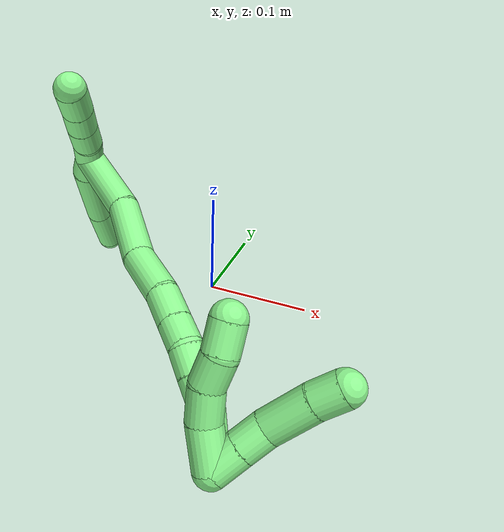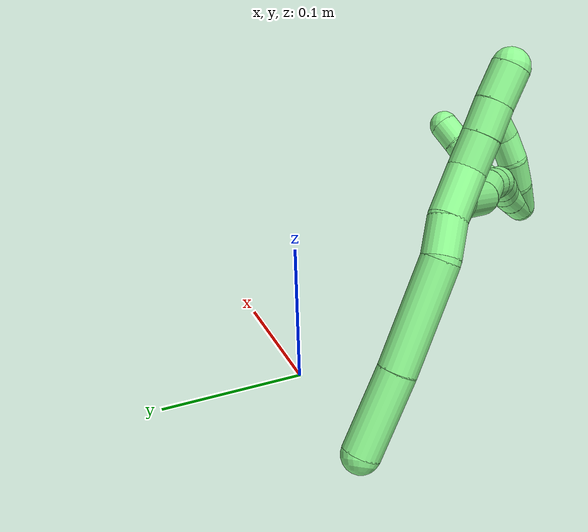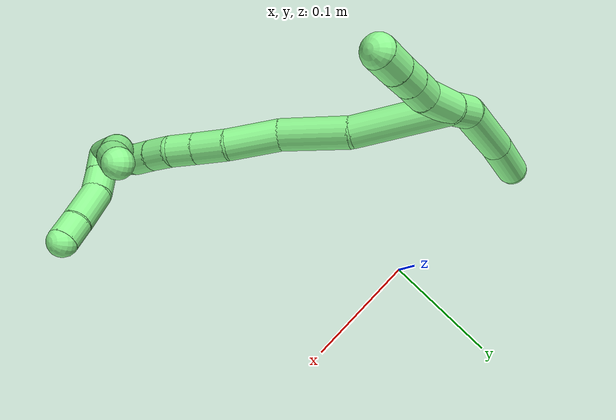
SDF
<sdf version="1.7">
 <world name="default">
  <model name="13">
   <static>0</static>
   <link name="13">
    <collision name="collision-cylinder-e_1_2_8">
     <pose>-5.1e-05 0.000613 -0.012474 -3.09252 -0.004103 0.166791</pose>
     <geometry><cylinder><radius>0.0125</radius><length>0.024977</length></cylinder></geometry>
     <surface>
      <friction><ode><mu>1.16</mu><mu2>1.16</mu2><slip1>0</slip1><slip2>0</slip2></ode></friction>
      <contact><ode><kp>1e+06</kp><kd>1</kd><max_vel>0</max_vel><min_depth>0.001</min_depth></ode></contact>
     </surface>
    </collision>
    <visual name="visual-cylinder-e_1_2_8">
     <pose>-5.1e-05 0.000613 -0.012474 -3.09252 -0.004103 0.166791</pose>
     <geometry><cylinder><radius>0.0125</radius><length>0.024977</length></cylinder></geometry>
     <material><ambient>0.564706 0.984314 0.572549 1</ambient></material>
    </visual>
    <collision name="collision-cylinder-e_2_8_9">
     <pose>0.010797 0.00352 -0.058589 -3.0735 0.312639 -2.71593</pose>
     <geometry><cylinder><radius>0.0125</radius><length>0.070876</length></cylinder></geometry>
     <surface>
      <friction><ode><mu>1.16</mu><mu2>1.16</mu2><slip1>0</slip1><slip2>0</slip2></ode></friction>
      <contact><ode><kp>1e+06</kp><kd>1</kd><max_vel>0</max_vel><min_depth>0.001</min_depth></ode></contact>
     </surface>
    </collision>
    <visual name="visual-cylinder-e_2_8_9">
     <pose>0.010797 0.00352 -0.058589 -3.0735 0.312639 -2.71593</pose>
     <geometry><cylinder><radius>0.0125</radius><length>0.070876</length></cylinder></geometry>
     <material><ambient>0.564706 0.984314 0.572549 1</ambient></material>
    </visual>
    <collision name="collision-cylinder-e_3_9_6">
     <pose>0.031264 0.007927 -0.11747 -3.05807 0.361158 -2.69157</pose>
     <geometry><cylinder><radius>0.0125</radius><length>0.054146</length></cylinder></geometry>
     <surface>
      <friction><ode><mu>1.16</mu><mu2>1.16</mu2><slip1>0</slip1><slip2>0</slip2></ode></friction>
      <contact><ode><kp>1e+06</kp><kd>1</kd><max_vel>0</max_vel><min_depth>0.001</min_depth></ode></contact>
     </surface>
    </collision>
    <visual name="visual-cylinder-e_3_9_6">
     <pose>0.031264 0.007927 -0.11747 -3.05807 0.361158 -2.69157</pose>
     <geometry><cylinder><radius>0.0125</radius><length>0.054146</length></cylinder></geometry>
     <material><ambient>0.564706 0.984314 0.572549 1</ambient></material>
    </visual>
    <collision name="collision-cylinder-e_1_2_10">
     <pose>-0.001284 -0.003761 0.015654 0.235765 -0.079559 -0.009427</pose>
     <geometry><cylinder><radius>0.0125</radius><length>0.032301</length></cylinder></geometry>
     <surface>
      <friction><ode><mu>1.16</mu><mu2>1.16</mu2><slip1>0</slip1><slip2>0</slip2></ode></friction>
      <contact><ode><kp>1e+06</kp><kd>1</kd><max_vel>0</max_vel><min_depth>0.001</min_depth></ode></contact>
     </surface>
    </collision>
    <visual name="visual-cylinder-e_1_2_10">
     <pose>-0.001284 -0.003761 0.015654 0.235765 -0.079559 -0.009427</pose>
     <geometry><cylinder><radius>0.0125</radius><length>0.032301</length></cylinder></geometry>
     <material><ambient>0.564706 0.984314 0.572549 1</ambient></material>
    </visual>
    <collision name="collision-cylinder-e_2_10_11">
     <pose>-0.00578 -0.008837 0.041945 0.123096 -0.291226 -0.018074</pose>
     <geometry><cylinder><radius>0.0125</radius><length>0.02238</length></cylinder></geometry>
     <surface>
      <friction><ode><mu>1.16</mu><mu2>1.16</mu2><slip1>0</slip1><slip2>0</slip2></ode></friction>
      <contact><ode><kp>1e+06</kp><kd>1</kd><max_vel>0</max_vel><min_depth>0.001</min_depth></ode></contact>
     </surface>
    </collision>
    <visual name="visual-cylinder-e_2_10_11">
     <pose>-0.00578 -0.008837 0.041945 0.123096 -0.291226 -0.018074</pose>
     <geometry><cylinder><radius>0.0125</radius><length>0.02238</length></cylinder></geometry>
     <material><ambient>0.564706 0.984314 0.572549 1</ambient></material>
    </visual>
    <collision name="collision-cylinder-e_3_11_12">
     <pose>-0.011747 -0.011289 0.062744 0.111305 -0.263148 -0.014745</pose>
     <geometry><cylinder><radius>0.0125</radius><length>0.021178</length></cylinder></geometry>
     <surface>
      <friction><ode><mu>1.16</mu><mu2>1.16</mu2><slip1>0</slip1><slip2>0</slip2></ode></friction>
      <contact><ode><kp>1e+06</kp><kd>1</kd><max_vel>0</max_vel><min_depth>0.001</min_depth></ode></contact>
     </surface>
    </collision>
    <visual name="visual-cylinder-e_3_11_12">
     <pose>-0.011747 -0.011289 0.062744 0.111305 -0.263148 -0.014745</pose>
     <geometry><cylinder><radius>0.0125</radius><length>0.021178</length></cylinder></geometry>
     <material><ambient>0.564706 0.984314 0.572549 1</ambient></material>
    </visual>
    <collision name="collision-cylinder-e_4_12_5">
     <pose>-0.01789 -0.014222 0.08435 0.155798 -0.284563 -0.022362</pose>
     <geometry><cylinder><radius>0.0125</radius><length>0.024142</length></cylinder></geometry>
     <surface>
      <friction><ode><mu>1.16</mu><mu2>1.16</mu2><slip1>0</slip1><slip2>0</slip2></ode></friction>
      <contact><ode><kp>1e+06</kp><kd>1</kd><max_vel>0</max_vel><min_depth>0.001</min_depth></ode></contact>
     </surface>
    </collision>
    <visual name="visual-cylinder-e_4_12_5">
     <pose>-0.01789 -0.014222 0.08435 0.155798 -0.284563 -0.022362</pose>
     <geometry><cylinder><radius>0.0125</radius><length>0.024142</length></cylinder></geometry>
     <material><ambient>0.564706 0.984314 0.572549 1</ambient></material>
    </visual>
    <collision name="collision-cylinder-e_1_2_13">
     <pose>0.025285 -0.023169 0.014558 1.00981 0.745948 0.425962</pose>
     <geometry><cylinder><radius>0.0125</radius><length>0.074513</length></cylinder></geometry>
     <surface>
      <friction><ode><mu>1.16</mu><mu2>1.16</mu2><slip1>0</slip1><slip2>0</slip2></ode></friction>
      <contact><ode><kp>1e+06</kp><kd>1</kd><max_vel>0</max_vel><min_depth>0.001</min_depth></ode></contact>
     </surface>
    </collision>
    <visual name="visual-cylinder-e_1_2_13">
     <pose>0.025285 -0.023169 0.014558 1.00981 0.745948 0.425962</pose>
     <geometry><cylinder><radius>0.0125</radius><length>0.074513</length></cylinder></geometry>
     <material><ambient>0.564706 0.984314 0.572549 1</ambient></material>
    </visual>
    <collision name="collision-cylinder-e_2_13_14">
     <pose>0.06545 -0.068041 0.037929 1.18501 0.565949 0.386609</pose>
     <geometry><cylinder><radius>0.0125</radius><length>0.055503</length></cylinder></geometry>
     <surface>
      <friction><ode><mu>1.16</mu><mu2>1.16</mu2><slip1>0</slip1><slip2>0</slip2></ode></friction>
      <contact><ode><kp>1e+06</kp><kd>1</kd><max_vel>0</max_vel><min_depth>0.001</min_depth></ode></contact>
     </surface>
    </collision>
    <visual name="visual-cylinder-e_2_13_14">
     <pose>0.06545 -0.068041 0.037929 1.18501 0.565949 0.386609</pose>
     <geometry><cylinder><radius>0.0125</radius><length>0.055503</length></cylinder></geometry>
     <material><ambient>0.564706 0.984314 0.572549 1</ambient></material>
    </visual>
    <collision name="collision-cylinder-e_3_14_15">
     <pose>0.093589 -0.102862 0.056665 0.923283 0.678445 0.347553</pose>
     <geometry><cylinder><radius>0.0125</radius><length>0.042251</length></cylinder></geometry>
     <surface>
      <friction><ode><mu>1.16</mu><mu2>1.16</mu2><slip1>0</slip1><slip2>0</slip2></ode></friction>
      <contact><ode><kp>1e+06</kp><kd>1</kd><max_vel>0</max_vel><min_depth>0.001</min_depth></ode></contact>
     </surface>
    </collision>
    <visual name="visual-cylinder-e_3_14_15">
     <pose>0.093589 -0.102862 0.056665 0.923283 0.678445 0.347553</pose>
     <geometry><cylinder><radius>0.0125</radius><length>0.042251</length></cylinder></geometry>
     <material><ambient>0.564706 0.984314 0.572549 1</ambient></material>
    </visual>
    <collision name="collision-cylinder-e_4_15_16">
     <pose>0.114796 -0.125635 0.07108 1.13514 0.641189 0.417231</pose>
     <geometry><cylinder><radius>0.0125</radius><length>0.026579</length></cylinder></geometry>
     <surface>
      <friction><ode><mu>1.16</mu><mu2>1.16</mu2><slip1>0</slip1><slip2>0</slip2></ode></friction>
      <contact><ode><kp>1e+06</kp><kd>1</kd><max_vel>0</max_vel><min_depth>0.001</min_depth></ode></contact>
     </surface>
    </collision>
    <visual name="visual-cylinder-e_4_15_16">
     <pose>0.114796 -0.125635 0.07108 1.13514 0.641189 0.417231</pose>
     <geometry><cylinder><radius>0.0125</radius><length>0.026579</length></cylinder></geometry>
     <material><ambient>0.564706 0.984314 0.572549 1</ambient></material>
    </visual>
    <collision name="collision-cylinder-e_5_16_17">
     <pose>0.128979 -0.142949 0.079335 1.11441 0.631017 0.401276</pose>
     <geometry><cylinder><radius>0.0125</radius><length>0.021133</length></cylinder></geometry>
     <surface>
      <friction><ode><mu>1.16</mu><mu2>1.16</mu2><slip1>0</slip1><slip2>0</slip2></ode></friction>
      <contact><ode><kp>1e+06</kp><kd>1</kd><max_vel>0</max_vel><min_depth>0.001</min_depth></ode></contact>
     </surface>
    </collision>
    <visual name="visual-cylinder-e_5_16_17">
     <pose>0.128979 -0.142949 0.079335 1.11441 0.631017 0.401276</pose>
     <geometry><cylinder><radius>0.0125</radius><length>0.021133</length></cylinder></geometry>
     <material><ambient>0.564706 0.984314 0.572549 1</ambient></material>
    </visual>
    <collision name="collision-cylinder-e_6_17_18">
     <pose>0.141748 -0.158151 0.083853 1.47063 0.711408 0.648367</pose>
     <geometry><cylinder><radius>0.0125</radius><length>0.020019</length></cylinder></geometry>
     <surface>
      <friction><ode><mu>1.16</mu><mu2>1.16</mu2><slip1>0</slip1><slip2>0</slip2></ode></friction>
      <contact><ode><kp>1e+06</kp><kd>1</kd><max_vel>0</max_vel><min_depth>0.001</min_depth></ode></contact>
     </surface>
    </collision>
    <visual name="visual-cylinder-e_6_17_18">
     <pose>0.141748 -0.158151 0.083853 1.47063 0.711408 0.648367</pose>
     <geometry><cylinder><radius>0.0125</radius><length>0.020019</length></cylinder></geometry>
     <material><ambient>0.564706 0.984314 0.572549 1</ambient></material>
    </visual>
    <collision name="collision-cylinder-e_7_18_19">
     <pose>0.155044 -0.173049 0.085066 1.50902 0.742412 0.701572</pose>
     <geometry><cylinder><radius>0.0125</radius><length>0.020001</length></cylinder></geometry>
     <surface>
      <friction><ode><mu>1.16</mu><mu2>1.16</mu2><slip1>0</slip1><slip2>0</slip2></ode></friction>
      <contact><ode><kp>1e+06</kp><kd>1</kd><max_vel>0</max_vel><min_depth>0.001</min_depth></ode></contact>
     </surface>
    </collision>
    <visual name="visual-cylinder-e_7_18_19">
     <pose>0.155044 -0.173049 0.085066 1.50902 0.742412 0.701572</pose>
     <geometry><cylinder><radius>0.0125</radius><length>0.020001</length></cylinder></geometry>
     <material><ambient>0.564706 0.984314 0.572549 1</ambient></material>
    </visual>
    <collision name="collision-cylinder-e_8_19_20">
     <pose>0.166318 -0.189327 0.085417 1.58239 0.468176 0.473436</pose>
     <geometry><cylinder><radius>0.0125</radius><length>0.020001</length></cylinder></geometry>
     <surface>
      <friction><ode><mu>1.16</mu><mu2>1.16</mu2><slip1>0</slip1><slip2>0</slip2></ode></friction>
      <contact><ode><kp>1e+06</kp><kd>1</kd><max_vel>0</max_vel><min_depth>0.001</min_depth></ode></contact>
     </surface>
    </collision>
    <visual name="visual-cylinder-e_8_19_20">
     <pose>0.166318 -0.189327 0.085417 1.58239 0.468176 0.473436</pose>
     <geometry><cylinder><radius>0.0125</radius><length>0.020001</length></cylinder></geometry>
     <material><ambient>0.564706 0.984314 0.572549 1</ambient></material>
    </visual>
    <collision name="collision-cylinder-e_9_20_1">
     <pose>0.175283 -0.207203 0.085121 1.59234 0.46137 0.471052</pose>
     <geometry><cylinder><radius>0.0125</radius><length>0.020001</length></cylinder></geometry>
     <surface>
      <friction><ode><mu>1.16</mu><mu2>1.16</mu2><slip1>0</slip1><slip2>0</slip2></ode></friction>
      <contact><ode><kp>1e+06</kp><kd>1</kd><max_vel>0</max_vel><min_depth>0.001</min_depth></ode></contact>
     </surface>
    </collision>
    <visual name="visual-cylinder-e_9_20_1">
     <pose>0.175283 -0.207203 0.085121 1.59234 0.46137 0.471052</pose>
     <geometry><cylinder><radius>0.0125</radius><length>0.020001</length></cylinder></geometry>
     <material><ambient>0.564706 0.984314 0.572549 1</ambient></material>
    </visual>
    <collision name="collision-cylinder-e_1_1_21">
     <pose>0.170742 -0.204978 0.090743 -1.09109 -0.619845 0.383983</pose>
     <geometry><cylinder><radius>0.0125</radius><length>0.03096</length></cylinder></geometry>
     <surface>
      <friction><ode><mu>1.16</mu><mu2>1.16</mu2><slip1>0</slip1><slip2>0</slip2></ode></friction>
      <contact><ode><kp>1e+06</kp><kd>1</kd><max_vel>0</max_vel><min_depth>0.001</min_depth></ode></contact>
     </surface>
    </collision>
    <visual name="visual-cylinder-e_1_1_21">
     <pose>0.170742 -0.204978 0.090743 -1.09109 -0.619845 0.383983</pose>
     <geometry><cylinder><radius>0.0125</radius><length>0.03096</length></cylinder></geometry>
     <material><ambient>0.564706 0.984314 0.572549 1</ambient></material>
    </visual>
    <collision name="collision-cylinder-e_2_21_22">
     <pose>0.156801 -0.185164 0.104022 -0.85807 -0.409135 0.189248</pose>
     <geometry><cylinder><radius>0.0125</radius><length>0.024883</length></cylinder></geometry>
     <surface>
      <friction><ode><mu>1.16</mu><mu2>1.16</mu2><slip1>0</slip1><slip2>0</slip2></ode></friction>
      <contact><ode><kp>1e+06</kp><kd>1</kd><max_vel>0</max_vel><min_depth>0.001</min_depth></ode></contact>
     </surface>
    </collision>
    <visual name="visual-cylinder-e_2_21_22">
     <pose>0.156801 -0.185164 0.104022 -0.85807 -0.409135 0.189248</pose>
     <geometry><cylinder><radius>0.0125</radius><length>0.024883</length></cylinder></geometry>
     <material><ambient>0.564706 0.984314 0.572549 1</ambient></material>
    </visual>
    <collision name="collision-cylinder-e_3_22_23">
     <pose>0.150532 -0.16892 0.119419 -0.764505 -0.119412 0.048055</pose>
     <geometry><cylinder><radius>0.0125</radius><length>0.02214</length></cylinder></geometry>
     <surface>
      <friction><ode><mu>1.16</mu><mu2>1.16</mu2><slip1>0</slip1><slip2>0</slip2></ode></friction>
      <contact><ode><kp>1e+06</kp><kd>1</kd><max_vel>0</max_vel><min_depth>0.001</min_depth></ode></contact>
     </surface>
    </collision>
    <visual name="visual-cylinder-e_3_22_23">
     <pose>0.150532 -0.16892 0.119419 -0.764505 -0.119412 0.048055</pose>
     <geometry><cylinder><radius>0.0125</radius><length>0.02214</length></cylinder></geometry>
     <material><ambient>0.564706 0.984314 0.572549 1</ambient></material>
    </visual>
    <collision name="collision-cylinder-e_4_23_4">
     <pose>0.146516 -0.152142 0.132813 -1.03365 -0.247544 0.14118</pose>
     <geometry><cylinder><radius>0.0125</radius><length>0.022017</length></cylinder></geometry>
     <surface>
      <friction><ode><mu>1.16</mu><mu2>1.16</mu2><slip1>0</slip1><slip2>0</slip2></ode></friction>
      <contact><ode><kp>1e+06</kp><kd>1</kd><max_vel>0</max_vel><min_depth>0.001</min_depth></ode></contact>
     </surface>
    </collision>
    <visual name="visual-cylinder-e_4_23_4">
     <pose>0.146516 -0.152142 0.132813 -1.03365 -0.247544 0.14118</pose>
     <geometry><cylinder><radius>0.0125</radius><length>0.022017</length></cylinder></geometry>
     <material><ambient>0.564706 0.984314 0.572549 1</ambient></material>
    </visual>
    <collision name="collision-cylinder-e_1_1_24">
     <pose>0.184401 -0.207379 0.090651 -0.993022 0.418959 -0.229353</pose>
     <geometry><cylinder><radius>0.0125</radius><length>0.022941</length></cylinder></geometry>
     <surface>
      <friction><ode><mu>1.16</mu><mu2>1.16</mu2><slip1>0</slip1><slip2>0</slip2></ode></friction>
      <contact><ode><kp>1e+06</kp><kd>1</kd><max_vel>0</max_vel><min_depth>0.001</min_depth></ode></contact>
     </surface>
    </collision>
    <visual name="visual-cylinder-e_1_1_24">
     <pose>0.184401 -0.207379 0.090651 -0.993022 0.418959 -0.229353</pose>
     <geometry><cylinder><radius>0.0125</radius><length>0.022941</length></cylinder></geometry>
     <material><ambient>0.564706 0.984314 0.572549 1</ambient></material>
    </visual>
    <collision name="collision-cylinder-e_2_24_25">
     <pose>0.19329 -0.190749 0.101945 -0.953747 0.413327 -0.215795</pose>
     <geometry><cylinder><radius>0.0125</radius><length>0.021024</length></cylinder></geometry>
     <surface>
      <friction><ode><mu>1.16</mu><mu2>1.16</mu2><slip1>0</slip1><slip2>0</slip2></ode></friction>
      <contact><ode><kp>1e+06</kp><kd>1</kd><max_vel>0</max_vel><min_depth>0.001</min_depth></ode></contact>
     </surface>
    </collision>
    <visual name="visual-cylinder-e_2_24_25">
     <pose>0.19329 -0.190749 0.101945 -0.953747 0.413327 -0.215795</pose>
     <geometry><cylinder><radius>0.0125</radius><length>0.021024</length></cylinder></geometry>
     <material><ambient>0.564706 0.984314 0.572549 1</ambient></material>
    </visual>
    <collision name="collision-cylinder-e_3_25_26">
     <pose>0.204455 -0.17314 0.12055 -0.642609 0.403078 -0.135797</pose>
     <geometry><cylinder><radius>0.0125</radius><length>0.035402</length></cylinder></geometry>
     <surface>
      <friction><ode><mu>1.16</mu><mu2>1.16</mu2><slip1>0</slip1><slip2>0</slip2></ode></friction>
      <contact><ode><kp>1e+06</kp><kd>1</kd><max_vel>0</max_vel><min_depth>0.001</min_depth></ode></contact>
     </surface>
    </collision>
    <visual name="visual-cylinder-e_3_25_26">
     <pose>0.204455 -0.17314 0.12055 -0.642609 0.403078 -0.135797</pose>
     <geometry><cylinder><radius>0.0125</radius><length>0.035402</length></cylinder></geometry>
     <material><ambient>0.564706 0.984314 0.572549 1</ambient></material>
    </visual>
    <collision name="collision-cylinder-e_4_26_3">
     <pose>0.216411 -0.15834 0.141059 -0.593452 0.507411 -0.158228</pose>
     <geometry><cylinder><radius>0.0125</radius><length>0.020633</length></cylinder></geometry>
     <surface>
      <friction><ode><mu>1.16</mu><mu2>1.16</mu2><slip1>0</slip1><slip2>0</slip2></ode></friction>
      <contact><ode><kp>1e+06</kp><kd>1</kd><max_vel>0</max_vel><min_depth>0.001</min_depth></ode></contact>
     </surface>
    </collision>
    <visual name="visual-cylinder-e_4_26_3">
     <pose>0.216411 -0.15834 0.141059 -0.593452 0.507411 -0.158228</pose>
     <geometry><cylinder><radius>0.0125</radius><length>0.020633</length></cylinder></geometry>
     <material><ambient>0.564706 0.984314 0.572549 1</ambient></material>
    </visual>
    <collision name="collision-sphere-3">
     <pose>0.221424 -0.153298 0.148534 0 -0 0</pose>
     <geometry><sphere><radius>0.0125</radius></sphere></geometry>
     <surface>
      <friction><ode><mu>1.16</mu><mu2>1.16</mu2><slip1>0</slip1><slip2>0</slip2></ode></friction>
      <contact><ode><kp>1e+06</kp><kd>1</kd><max_vel>0</max_vel><min_depth>0.001</min_depth></ode></contact>
     </surface>
    </collision>
    <visual name="visual-sphere-3">
     <pose>0.221424 -0.153298 0.148534 0 -0 0</pose>
     <geometry><sphere><radius>0.0125</radius></sphere></geometry>
     <material><ambient>0.564706 0.984314 0.572549 1</ambient></material>
    </visual>
    <collision name="collision-sphere-26">
     <pose>0.211398 -0.163382 0.133584 0 -0 0</pose>
     <geometry><sphere><radius>0.0125</radius></sphere></geometry>
     <surface>
      <friction><ode><mu>1.16</mu><mu2>1.16</mu2><slip1>0</slip1><slip2>0</slip2></ode></friction>
      <contact><ode><kp>1e+06</kp><kd>1</kd><max_vel>0</max_vel><min_depth>0.001</min_depth></ode></contact>
     </surface>
    </collision>
    <visual name="visual-sphere-26">
     <pose>0.211398 -0.163382 0.133584 0 -0 0</pose>
     <geometry><sphere><radius>0.0125</radius></sphere></geometry>
     <material><ambient>0.564706 0.984314 0.572549 1</ambient></material>
    </visual>
    <collision name="collision-sphere-25">
     <pose>0.197512 -0.182898 0.107515 0 -0 0</pose>
     <geometry><sphere><radius>0.0125</radius></sphere></geometry>
     <surface>
      <friction><ode><mu>1.16</mu><mu2>1.16</mu2><slip1>0</slip1><slip2>0</slip2></ode></friction>
      <contact><ode><kp>1e+06</kp><kd>1</kd><max_vel>0</max_vel><min_depth>0.001</min_depth></ode></contact>
     </surface>
    </collision>
    <visual name="visual-sphere-25">
     <pose>0.197512 -0.182898 0.107515 0 -0 0</pose>
     <geometry><sphere><radius>0.0125</radius></sphere></geometry>
     <material><ambient>0.564706 0.984314 0.572549 1</ambient></material>
    </visual>
    <collision name="collision-sphere-24">
     <pose>0.189067 -0.198601 0.096374 0 -0 0</pose>
     <geometry><sphere><radius>0.0125</radius></sphere></geometry>
     <surface>
      <friction><ode><mu>1.16</mu><mu2>1.16</mu2><slip1>0</slip1><slip2>0</slip2></ode></friction>
      <contact><ode><kp>1e+06</kp><kd>1</kd><max_vel>0</max_vel><min_depth>0.001</min_depth></ode></contact>
     </surface>
    </collision>
    <visual name="visual-sphere-24">
     <pose>0.189067 -0.198601 0.096374 0 -0 0</pose>
     <geometry><sphere><radius>0.0125</radius></sphere></geometry>
     <material><ambient>0.564706 0.984314 0.572549 1</ambient></material>
    </visual>
    <collision name="collision-sphere-4">
     <pose>0.143819 -0.142972 0.138274 0 -0 0</pose>
     <geometry><sphere><radius>0.0125</radius></sphere></geometry>
     <surface>
      <friction><ode><mu>1.16</mu><mu2>1.16</mu2><slip1>0</slip1><slip2>0</slip2></ode></friction>
      <contact><ode><kp>1e+06</kp><kd>1</kd><max_vel>0</max_vel><min_depth>0.001</min_depth></ode></contact>
     </surface>
    </collision>
    <visual name="visual-sphere-4">
     <pose>0.143819 -0.142972 0.138274 0 -0 0</pose>
     <geometry><sphere><radius>0.0125</radius></sphere></geometry>
     <material><ambient>0.564706 0.984314 0.572549 1</ambient></material>
    </visual>
    <collision name="collision-sphere-23">
     <pose>0.149214 -0.161312 0.127352 0 -0 0</pose>
     <geometry><sphere><radius>0.0125</radius></sphere></geometry>
     <surface>
      <friction><ode><mu>1.16</mu><mu2>1.16</mu2><slip1>0</slip1><slip2>0</slip2></ode></friction>
      <contact><ode><kp>1e+06</kp><kd>1</kd><max_vel>0</max_vel><min_depth>0.001</min_depth></ode></contact>
     </surface>
    </collision>
    <visual name="visual-sphere-23">
     <pose>0.149214 -0.161312 0.127352 0 -0 0</pose>
     <geometry><sphere><radius>0.0125</radius></sphere></geometry>
     <material><ambient>0.564706 0.984314 0.572549 1</ambient></material>
    </visual>
    <collision name="collision-sphere-22">
     <pose>0.151851 -0.176528 0.111486 0 -0 0</pose>
     <geometry><sphere><radius>0.0125</radius></sphere></geometry>
     <surface>
      <friction><ode><mu>1.16</mu><mu2>1.16</mu2><slip1>0</slip1><slip2>0</slip2></ode></friction>
      <contact><ode><kp>1e+06</kp><kd>1</kd><max_vel>0</max_vel><min_depth>0.001</min_depth></ode></contact>
     </surface>
    </collision>
    <visual name="visual-sphere-22">
     <pose>0.151851 -0.176528 0.111486 0 -0 0</pose>
     <geometry><sphere><radius>0.0125</radius></sphere></geometry>
     <material><ambient>0.564706 0.984314 0.572549 1</ambient></material>
    </visual>
    <collision name="collision-sphere-21">
     <pose>0.16175 -0.1938 0.096559 0 -0 0</pose>
     <geometry><sphere><radius>0.0125</radius></sphere></geometry>
     <surface>
      <friction><ode><mu>1.16</mu><mu2>1.16</mu2><slip1>0</slip1><slip2>0</slip2></ode></friction>
      <contact><ode><kp>1e+06</kp><kd>1</kd><max_vel>0</max_vel><min_depth>0.001</min_depth></ode></contact>
     </surface>
    </collision>
    <visual name="visual-sphere-21">
     <pose>0.16175 -0.1938 0.096559 0 -0 0</pose>
     <geometry><sphere><radius>0.0125</radius></sphere></geometry>
     <material><ambient>0.564706 0.984314 0.572549 1</ambient></material>
    </visual>
    <collision name="collision-sphere-1">
     <pose>0.179735 -0.216156 0.084928 0 -0 0</pose>
     <geometry><sphere><radius>0.0125</radius></sphere></geometry>
     <surface>
      <friction><ode><mu>1.16</mu><mu2>1.16</mu2><slip1>0</slip1><slip2>0</slip2></ode></friction>
      <contact><ode><kp>1e+06</kp><kd>1</kd><max_vel>0</max_vel><min_depth>0.001</min_depth></ode></contact>
     </surface>
    </collision>
    <visual name="visual-sphere-1">
     <pose>0.179735 -0.216156 0.084928 0 -0 0</pose>
     <geometry><sphere><radius>0.0125</radius></sphere></geometry>
     <material><ambient>0.564706 0.984314 0.572549 1</ambient></material>
    </visual>
    <collision name="collision-sphere-11">
     <pose>-0.008993 -0.010153 0.052583 0 -0 0</pose>
     <geometry><sphere><radius>0.0125</radius></sphere></geometry>
     <surface>
      <friction><ode><mu>1.16</mu><mu2>1.16</mu2><slip1>0</slip1><slip2>0</slip2></ode></friction>
      <contact><ode><kp>1e+06</kp><kd>1</kd><max_vel>0</max_vel><min_depth>0.001</min_depth></ode></contact>
     </surface>
    </collision>
    <visual name="visual-sphere-11">
     <pose>-0.008993 -0.010153 0.052583 0 -0 0</pose>
     <geometry><sphere><radius>0.0125</radius></sphere></geometry>
     <material><ambient>0.564706 0.984314 0.572549 1</ambient></material>
    </visual>
    <collision name="collision-sphere-10">
     <pose>-0.002567 -0.007521 0.031308 0 -0 0</pose>
     <geometry><sphere><radius>0.0125</radius></sphere></geometry>
     <surface>
      <friction><ode><mu>1.16</mu><mu2>1.16</mu2><slip1>0</slip1><slip2>0</slip2></ode></friction>
      <contact><ode><kp>1e+06</kp><kd>1</kd><max_vel>0</max_vel><min_depth>0.001</min_depth></ode></contact>
     </surface>
    </collision>
    <visual name="visual-sphere-10">
     <pose>-0.002567 -0.007521 0.031308 0 -0 0</pose>
     <geometry><sphere><radius>0.0125</radius></sphere></geometry>
     <material><ambient>0.564706 0.984314 0.572549 1</ambient></material>
    </visual>
    <collision name="collision-sphere-6">
     <pose>0.04083 0.01004 -0.142708 0 -0 0</pose>
     <geometry><sphere><radius>0.0125</radius></sphere></geometry>
     <surface>
      <friction><ode><mu>1.16</mu><mu2>1.16</mu2><slip1>0</slip1><slip2>0</slip2></ode></friction>
      <contact><ode><kp>1e+06</kp><kd>1</kd><max_vel>0</max_vel><min_depth>0.001</min_depth></ode></contact>
     </surface>
    </collision>
    <visual name="visual-sphere-6">
     <pose>0.04083 0.01004 -0.142708 0 -0 0</pose>
     <geometry><sphere><radius>0.0125</radius></sphere></geometry>
     <material><ambient>0.564706 0.984314 0.572549 1</ambient></material>
    </visual>
    <collision name="collision-sphere-9">
     <pose>0.021697 0.005814 -0.092232 0 -0 0</pose>
     <geometry><sphere><radius>0.0125</radius></sphere></geometry>
     <surface>
      <friction><ode><mu>1.16</mu><mu2>1.16</mu2><slip1>0</slip1><slip2>0</slip2></ode></friction>
      <contact><ode><kp>1e+06</kp><kd>1</kd><max_vel>0</max_vel><min_depth>0.001</min_depth></ode></contact>
     </surface>
    </collision>
    <visual name="visual-sphere-9">
     <pose>0.021697 0.005814 -0.092232 0 -0 0</pose>
     <geometry><sphere><radius>0.0125</radius></sphere></geometry>
     <material><ambient>0.564706 0.984314 0.572549 1</ambient></material>
    </visual>
    <collision name="collision-sphere-2">
     <geometry><sphere><radius>0.0125</radius></sphere></geometry>
     <surface>
      <friction><ode><mu>1.16</mu><mu2>1.16</mu2><slip1>0</slip1><slip2>0</slip2></ode></friction>
      <contact><ode><kp>1e+06</kp><kd>1</kd><max_vel>0</max_vel><min_depth>0.001</min_depth></ode></contact>
     </surface>
    </collision>
    <visual name="visual-sphere-2">
     <geometry><sphere><radius>0.0125</radius></sphere></geometry>
     <material><ambient>0.564706 0.984314 0.572549 1</ambient></material>
    </visual>
    <collision name="collision-sphere-19">
     <pose>0.161805 -0.180403 0.085521 0 -0 0</pose>
     <geometry><sphere><radius>0.0125</radius></sphere></geometry>
     <surface>
      <friction><ode><mu>1.16</mu><mu2>1.16</mu2><slip1>0</slip1><slip2>0</slip2></ode></friction>
      <contact><ode><kp>1e+06</kp><kd>1</kd><max_vel>0</max_vel><min_depth>0.001</min_depth></ode></contact>
     </surface>
    </collision>
    <visual name="visual-sphere-19">
     <pose>0.161805 -0.180403 0.085521 0 -0 0</pose>
     <geometry><sphere><radius>0.0125</radius></sphere></geometry>
     <material><ambient>0.564706 0.984314 0.572549 1</ambient></material>
    </visual>
    <collision name="collision-sphere-8">
     <pose>-0.000102 0.001225 -0.024947 0 -0 0</pose>
     <geometry><sphere><radius>0.0125</radius></sphere></geometry>
     <surface>
      <friction><ode><mu>1.16</mu><mu2>1.16</mu2><slip1>0</slip1><slip2>0</slip2></ode></friction>
      <contact><ode><kp>1e+06</kp><kd>1</kd><max_vel>0</max_vel><min_depth>0.001</min_depth></ode></contact>
     </surface>
    </collision>
    <visual name="visual-sphere-8">
     <pose>-0.000102 0.001225 -0.024947 0 -0 0</pose>
     <geometry><sphere><radius>0.0125</radius></sphere></geometry>
     <material><ambient>0.564706 0.984314 0.572549 1</ambient></material>
    </visual>
    <collision name="collision-sphere-12">
     <pose>-0.014502 -0.012425 0.072905 0 -0 0</pose>
     <geometry><sphere><radius>0.0125</radius></sphere></geometry>
     <surface>
      <friction><ode><mu>1.16</mu><mu2>1.16</mu2><slip1>0</slip1><slip2>0</slip2></ode></friction>
      <contact><ode><kp>1e+06</kp><kd>1</kd><max_vel>0</max_vel><min_depth>0.001</min_depth></ode></contact>
     </surface>
    </collision>
    <visual name="visual-sphere-12">
     <pose>-0.014502 -0.012425 0.072905 0 -0 0</pose>
     <geometry><sphere><radius>0.0125</radius></sphere></geometry>
     <material><ambient>0.564706 0.984314 0.572549 1</ambient></material>
    </visual>
    <collision name="collision-sphere-5">
     <pose>-0.021279 -0.01602 0.095795 0 -0 0</pose>
     <geometry><sphere><radius>0.0125</radius></sphere></geometry>
     <surface>
      <friction><ode><mu>1.16</mu><mu2>1.16</mu2><slip1>0</slip1><slip2>0</slip2></ode></friction>
      <contact><ode><kp>1e+06</kp><kd>1</kd><max_vel>0</max_vel><min_depth>0.001</min_depth></ode></contact>
     </surface>
    </collision>
    <visual name="visual-sphere-5">
     <pose>-0.021279 -0.01602 0.095795 0 -0 0</pose>
     <geometry><sphere><radius>0.0125</radius></sphere></geometry>
     <material><ambient>0.564706 0.984314 0.572549 1</ambient></material>
    </visual>
    <collision name="collision-sphere-13">
     <pose>0.050569 -0.046338 0.029115 0 -0 0</pose>
     <geometry><sphere><radius>0.0125</radius></sphere></geometry>
     <surface>
      <friction><ode><mu>1.16</mu><mu2>1.16</mu2><slip1>0</slip1><slip2>0</slip2></ode></friction>
      <contact><ode><kp>1e+06</kp><kd>1</kd><max_vel>0</max_vel><min_depth>0.001</min_depth></ode></contact>
     </surface>
    </collision>
    <visual name="visual-sphere-13">
     <pose>0.050569 -0.046338 0.029115 0 -0 0</pose>
     <geometry><sphere><radius>0.0125</radius></sphere></geometry>
     <material><ambient>0.564706 0.984314 0.572549 1</ambient></material>
    </visual>
    <collision name="collision-sphere-14">
     <pose>0.080331 -0.089743 0.046744 0 -0 0</pose>
     <geometry><sphere><radius>0.0125</radius></sphere></geometry>
     <surface>
      <friction><ode><mu>1.16</mu><mu2>1.16</mu2><slip1>0</slip1><slip2>0</slip2></ode></friction>
      <contact><ode><kp>1e+06</kp><kd>1</kd><max_vel>0</max_vel><min_depth>0.001</min_depth></ode></contact>
     </surface>
    </collision>
    <visual name="visual-sphere-14">
     <pose>0.080331 -0.089743 0.046744 0 -0 0</pose>
     <geometry><sphere><radius>0.0125</radius></sphere></geometry>
     <material><ambient>0.564706 0.984314 0.572549 1</ambient></material>
    </visual>
    <collision name="collision-sphere-15">
     <pose>0.106847 -0.11598 0.066586 0 -0 0</pose>
     <geometry><sphere><radius>0.0125</radius></sphere></geometry>
     <surface>
      <friction><ode><mu>1.16</mu><mu2>1.16</mu2><slip1>0</slip1><slip2>0</slip2></ode></friction>
      <contact><ode><kp>1e+06</kp><kd>1</kd><max_vel>0</max_vel><min_depth>0.001</min_depth></ode></contact>
     </surface>
    </collision>
    <visual name="visual-sphere-15">
     <pose>0.106847 -0.11598 0.066586 0 -0 0</pose>
     <geometry><sphere><radius>0.0125</radius></sphere></geometry>
     <material><ambient>0.564706 0.984314 0.572549 1</ambient></material>
    </visual>
    <collision name="collision-sphere-16">
     <pose>0.122745 -0.13529 0.075575 0 -0 0</pose>
     <geometry><sphere><radius>0.0125</radius></sphere></geometry>
     <surface>
      <friction><ode><mu>1.16</mu><mu2>1.16</mu2><slip1>0</slip1><slip2>0</slip2></ode></friction>
      <contact><ode><kp>1e+06</kp><kd>1</kd><max_vel>0</max_vel><min_depth>0.001</min_depth></ode></contact>
     </surface>
    </collision>
    <visual name="visual-sphere-16">
     <pose>0.122745 -0.13529 0.075575 0 -0 0</pose>
     <geometry><sphere><radius>0.0125</radius></sphere></geometry>
     <material><ambient>0.564706 0.984314 0.572549 1</ambient></material>
    </visual>
    <collision name="collision-sphere-17">
     <pose>0.135213 -0.150607 0.083095 0 -0 0</pose>
     <geometry><sphere><radius>0.0125</radius></sphere></geometry>
     <surface>
      <friction><ode><mu>1.16</mu><mu2>1.16</mu2><slip1>0</slip1><slip2>0</slip2></ode></friction>
      <contact><ode><kp>1e+06</kp><kd>1</kd><max_vel>0</max_vel><min_depth>0.001</min_depth></ode></contact>
     </surface>
    </collision>
    <visual name="visual-sphere-17">
     <pose>0.135213 -0.150607 0.083095 0 -0 0</pose>
     <geometry><sphere><radius>0.0125</radius></sphere></geometry>
     <material><ambient>0.564706 0.984314 0.572549 1</ambient></material>
    </visual>
    <collision name="collision-sphere-18">
     <pose>0.148284 -0.165694 0.084611 0 -0 0</pose>
     <geometry><sphere><radius>0.0125</radius></sphere></geometry>
     <surface>
      <friction><ode><mu>1.16</mu><mu2>1.16</mu2><slip1>0</slip1><slip2>0</slip2></ode></friction>
      <contact><ode><kp>1e+06</kp><kd>1</kd><max_vel>0</max_vel><min_depth>0.001</min_depth></ode></contact>
     </surface>
    </collision>
    <visual name="visual-sphere-18">
     <pose>0.148284 -0.165694 0.084611 0 -0 0</pose>
     <geometry><sphere><radius>0.0125</radius></sphere></geometry>
     <material><ambient>0.564706 0.984314 0.572549 1</ambient></material>
    </visual>
    <collision name="collision-sphere-20">
     <pose>0.170831 -0.198251 0.085314 0 -0 0</pose>
     <geometry><sphere><radius>0.0125</radius></sphere></geometry>
     <surface>
      <friction><ode><mu>1.16</mu><mu2>1.16</mu2><slip1>0</slip1><slip2>0</slip2></ode></friction>
      <contact><ode><kp>1e+06</kp><kd>1</kd><max_vel>0</max_vel><min_depth>0.001</min_depth></ode></contact>
     </surface>
    </collision>
    <visual name="visual-sphere-20">
     <pose>0.170831 -0.198251 0.085314 0 -0 0</pose>
     <geometry><sphere><radius>0.0125</radius></sphere></geometry>
     <material><ambient>0.564706 0.984314 0.572549 1</ambient></material>
    </visual>
    <inertial>
     <pose>0.087157 -0.089576 0.043057 0 -0 0</pose>
     <mass>0.75</mass>
     <inertia>
      <ixx>5.9e-05</ixx>
      <ixy>0</ixy>
      <ixz>0</ixz>
      <iyy>0.000108</iyy>
      <iyz>0</iyz>
      <izz>-1.3e-05</izz>
     </inertia>
    </inertial>
   </link>
   <pose>-0.095226 -0.061418 0.150219 0.504596 0.447668 0.242902</pose>
  </model>
 </world>
</sdf>
